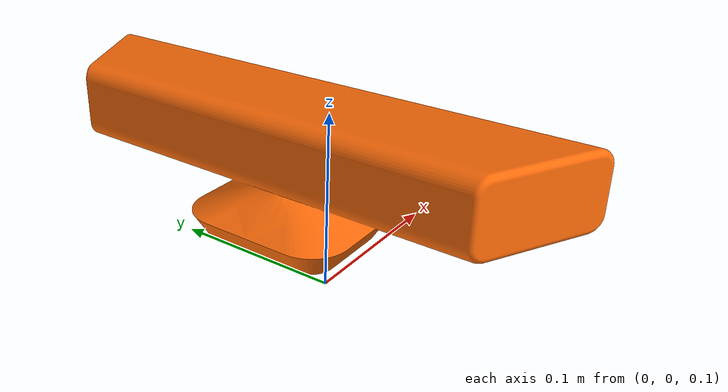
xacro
<?xml version="1.0"?>

<robot name="sensor" xmlns:xacro="http://www.ros.org/wiki/xacro">
  <xacro:property name="height1" value="1.2" />
  <xacro:property name="height2" value="0.5" />
  <xacro:property name="width" value="0.2" />
  <xacro:property name="mass" value="0.1" />
 <!-- Used for fixing robot to Gazebo 'base_link' -->
  <link name="kinect_world" />

  <gazebo reference="kinect_world">
    <gravity>0</gravity>
  </gazebo>

  <joint name="fixed" type="fixed">
    <parent link="kinect_world"/>
    <child link="kinect_link"/>
    <origin xyz="0 0 0.1" rpy="0 0 0"/>
  </joint>

  <!-- Kinect Link -->
  <link name="kinect_link">

    <visual>
      <origin xyz="0 0 0.1" rpy="0 0 0"/>
      <geometry>
          <mesh filename="package://image_generator/resources/cameras/kinect/kinect.dae" scale="0.001 0.001 0.001"/>
      </geometry>
      <material name="orange"/>
    </visual>

    <inertial>
      <origin xyz="0 0 0" rpy="0 0 0"/>
      <mass value="${mass}"/>
      <inertia
	  ixx="${mass}" ixy="0.0" ixz="0.0"
	  iyy="${mass}" iyz="0.0"
	  izz="${mass}"/>
    </inertial>
  </link>

  <link name="kinect_optical_link">
  </link>

  <joint name="optical_joint" type="fixed">
    <parent link="kinect_link"/>
    <child link="kinect_optical_link"/>
    <origin xyz="0.01 0 0.15" rpy="0.0 0 0"/>
  </joint>

  <material name="orange">
    <color rgba="${255/255} ${108/255} ${10/255} 1.0"/>
  </material>
    <gazebo reference="kinect_optical_link">
    <sensor type="depth" name="kinect_depth_sensor">
        <always_on>true</always_on>

        <horizontal_fov> ${91.2*3.14/180} </horizontal_fov>
        <vertical_fov> ${65.5*3.14/180} </vertical_fov>
        <diagonal_fov> ${100.6*3.14/180} </diagonal_fov>
        <update_rate>6.0</update_rate>
        <camera>

          <image>
            <format>R8G8B8</format>
            <width>640</width>
            <height>480</height>
          </image>
          <clip>
            <near>0.05</near>
            <far>4.0</far>
          </clip>
          <noise>
            <type>gaussian</type>
            <mean>0.0</mean>
            <stddev>0.005</stddev>
          </noise>
        </camera>
        <plugin name="kinect_frame_controller" filename="libgazebo_ros_openni_kinect.so">
          <alwaysOn>true</alwaysOn>
          <updateRate>6.0</updateRate>
          <cameraName>kinect</cameraName>
          <imageTopicName>color/image_raw</imageTopicName>
          <depthImageTopicName>depth/image_rect_raw</depthImageTopicName>
          <cameraInfoTopicName>color/camera_info</cameraInfoTopicName>
          <depthImageCameraInfoTopicName>depth/camera_info</depthImageCameraInfoTopicName>
          <pointCloudTopicName>depth_registered/points</pointCloudTopicName>
          <frameName>kinect_link</frameName>
          <pointCloudCutoff>0.05</pointCloudCutoff>
          <rangeMax>8.0</rangeMax>
        </plugin>
      </sensor>
  </gazebo>
</robot>
